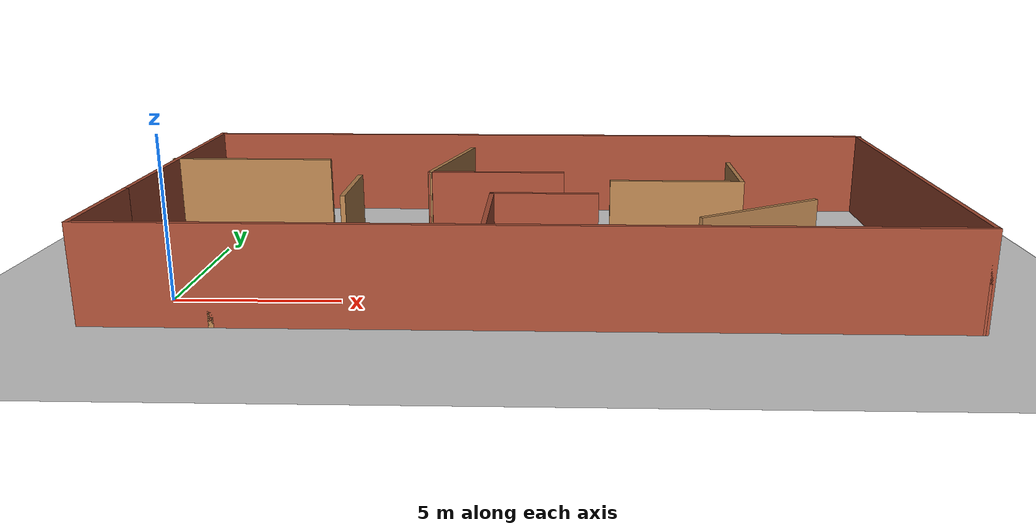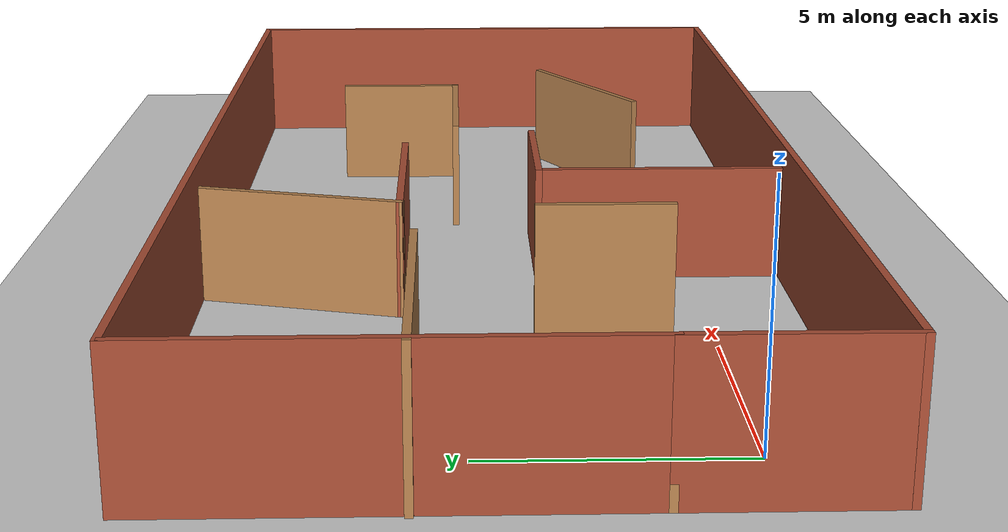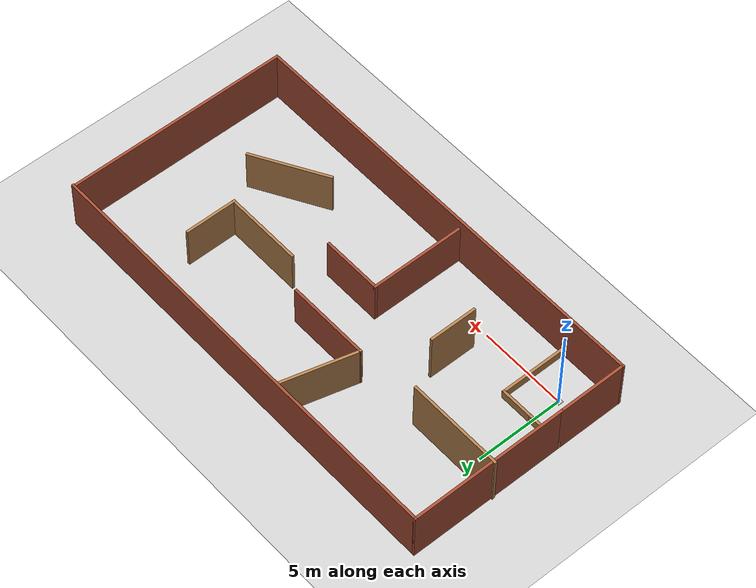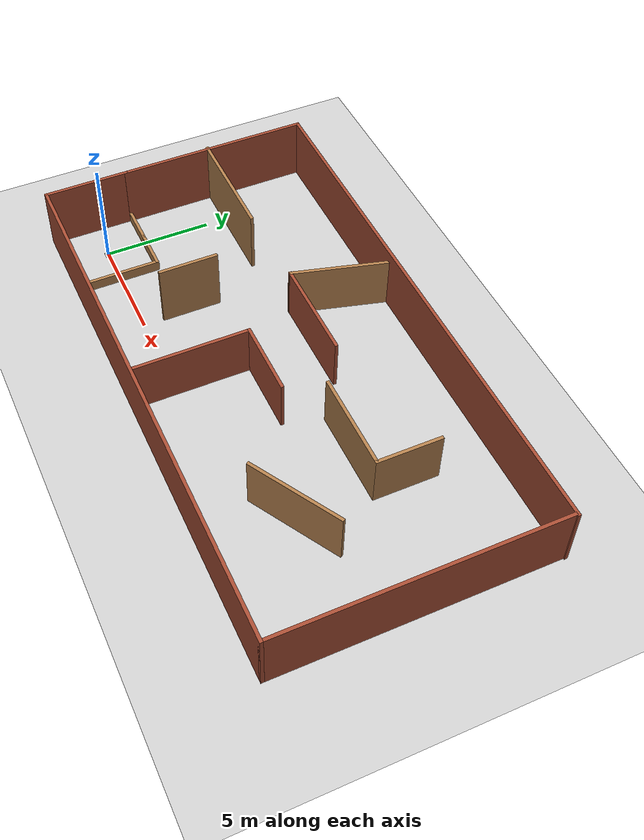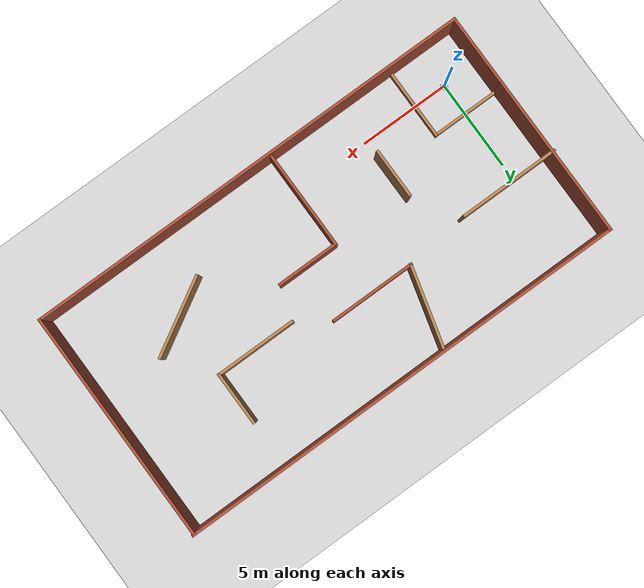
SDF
<sdf version="1.6">
 <world name="default">
  <light name="sun" type="directional">
   <pose>0 0 10 0 -0 0</pose>
   <diffuse>0.8 0.8 0.8 1</diffuse>
   <specular>0.2 0.2 0.2 1</specular>
   <attenuation>
    <range>1000</range>
    <constant>0.9</constant>
    <linear>0.01</linear>
    <quadratic>0.001</quadratic>
   </attenuation>
   <direction>-0.5 0.1 -0.9</direction>
  </light>
  <model name="ground_plane">
   <static>1</static>
   <link name="link">
    <collision name="collision">
     <geometry><plane><normal>0 0 1</normal><size>100 100</size></plane></geometry>
     <surface>
      <contact><collide_bitmask>65535</collide_bitmask></contact>
      <friction><ode><mu>100</mu><mu2>50</mu2></ode></friction>
     </surface>
    </collision>
    <visual name="visual">
     <cast_shadows>0</cast_shadows>
     <geometry><plane><normal>0 0 1</normal><size>100 100</size></plane></geometry>
     <material>
      <script><uri>file://media/materials/scripts/gazebo.material</uri><name>Gazebo/Grey</name></script>
     </material>
    </visual>
   </link>
  </model>
  <physics name="default_physics" default="0" type="ode">
   <ode>
    <solver>
     <type>quick</type>
     <iters>10</iters>
     <sor>1.3</sor>
     <use_dynamic_moi_rescaling>0</use_dynamic_moi_rescaling>
    </solver>
    <constraints>
     <cfm>0</cfm>
     <erp>0.2</erp>
     <contact_max_correcting_vel>100</contact_max_correcting_vel>
     <contact_surface_layer>0.001</contact_surface_layer>
    </constraints>
   </ode>
   <max_step_size>0.004</max_step_size>
   <real_time_factor>1</real_time_factor>
   <real_time_update_rate>250</real_time_update_rate>
  </physics>
  <gravity>0 0 -9.8066</gravity>
  <magnetic_field>6e-06 2.3e-05 -4.2e-05</magnetic_field>
  <atmosphere type="adiabatic"/>
  <scene><ambient>0.4 0.4 0.4 1</ambient><background>0.7 0.7 0.7 1</background><shadows>1</shadows></scene>
  <spherical_coordinates>
   <surface_model>EARTH_WGS84</surface_model>
   <latitude_deg>0</latitude_deg>
   <longitude_deg>0</longitude_deg>
   <elevation>0</elevation>
   <heading_deg>0</heading_deg>
  </spherical_coordinates>
  <model name="landing_pad">
   <link name="link">
    <inertial>
     <mass>1</mass>
     <inertia><ixx>1</ixx><ixy>0</ixy><ixz>0</ixz><iyy>1</iyy><iyz>0</iyz><izz>1</izz></inertia>
    </inertial>
    <visual name="visual">
     <cast_shadows>0</cast_shadows>
     <geometry><box><size>0.3 0.3 0.12</size></box></geometry>
     <material>
      <script>
       <uri>model://landing_pad/materials/scripts</uri>
       <uri>model://landing_pad/materials/textures</uri>
       <name>vrc/landing_pad</name>
      </script>
      <shader type="pixel"><normal_map>__default__</normal_map></shader>
     </material>
    </visual>
   </link>
   <static>1</static>
   <pose>0 0 -0.055 0 -0 0</pose>
  </model>
  <model name="explore_2">
   <pose>10.5435 4.296 0 0 -0 0</pose>
   <link name="Wall_64">
    <collision name="Wall_64_Collision">
     <geometry><box><size>2 0.15 0.5</size></box></geometry>
     <pose>0 0 0.25 0 -0 0</pose>
    </collision>
    <visual name="Wall_64_Visual">
     <pose>0 0 0.25 0 -0 0</pose>
     <geometry><box><size>2 0.15 0.5</size></box></geometry>
     <material>
      <script><uri>file://media/materials/scripts/gazebo.material</uri><name>Gazebo/Wood</name></script>
      <ambient>1 1 1 1</ambient>
     </material>
     <meta><layer>0</layer></meta>
    </visual>
    <pose>-9.6105 -2.5 0 0 -0 0</pose>
   </link>
   <link name="Wall_65">
    <collision name="Wall_65_Collision">
     <geometry><box><size>4 0.15 0.5</size></box></geometry>
     <pose>0 0 0.25 0 -0 0</pose>
    </collision>
    <visual name="Wall_65_Visual">
     <pose>0 0 0.25 0 -0 0</pose>
     <geometry><box><size>4 0.15 0.5</size></box></geometry>
     <material>
      <script><uri>file://media/materials/scripts/gazebo.material</uri><name>Gazebo/Wood</name></script>
      <ambient>1 1 1 1</ambient>
     </material>
     <meta><layer>0</layer></meta>
    </visual>
    <pose>-8.6855 -4.425 0 0 -0 -1.5708</pose>
   </link>
   <link name="Wall_67">
    <collision name="Wall_67_Collision">
     <geometry><box><size>2 0.15 0.5</size></box></geometry>
     <pose>0 0 0.25 0 -0 0</pose>
    </collision>
    <visual name="Wall_67_Visual">
     <pose>0 0 0.25 0 -0 0</pose>
     <geometry><box><size>2 0.15 0.5</size></box></geometry>
     <material>
      <script><uri>file://media/materials/scripts/gazebo.material</uri><name>Gazebo/Wood</name></script>
      <ambient>1 1 1 1</ambient>
     </material>
     <meta><layer>0</layer></meta>
    </visual>
    <pose>-11.4605 -2.5 0 0 -0 3.14159</pose>
   </link>
   <link name="Wall_69">
    <collision name="Wall_69_Collision">
     <geometry><box><size>4 0.15 3</size></box></geometry>
     <pose>0 0 1.5 0 -0 0</pose>
    </collision>
    <visual name="Wall_69_Visual">
     <pose>0 0 1.5 0 -0 0</pose>
     <geometry><box><size>4 0.15 3</size></box></geometry>
     <material>
      <script><uri>file://media/materials/scripts/gazebo.material</uri><name>Gazebo/Bricks</name></script>
      <ambient>1 1 1 1</ambient>
     </material>
     <meta><layer>0</layer></meta>
    </visual>
    <pose>-12.3855 -4.425 0 0 -0 -1.5708</pose>
   </link>
   <link name="Wall_70">
    <collision name="Wall_70_Collision">
     <geometry><box><size>24.9475 0.15 3</size></box></geometry>
     <pose>0 0 1.5 0 -0 0</pose>
    </collision>
    <visual name="Wall_70_Visual">
     <pose>0 0 1.5 0 -0 0</pose>
     <geometry><box><size>24.9475 0.15 3</size></box></geometry>
     <material>
      <script><uri>file://media/materials/scripts/gazebo.material</uri><name>Gazebo/Bricks</name></script>
      <ambient>1 1 1 1</ambient>
     </material>
     <meta><layer>0</layer></meta>
    </visual>
    <pose>0.013 -6.35 0 0 -0 0</pose>
   </link>
   <link name="Wall_71">
    <collision name="Wall_71_Collision">
     <geometry><box><size>12.75 0.15 3</size></box></geometry>
     <pose>0 0 1.5 0 -0 0</pose>
    </collision>
    <visual name="Wall_71_Visual">
     <pose>0 0 1.5 0 -0 0</pose>
     <geometry><box><size>12.75 0.15 3</size></box></geometry>
     <material>
      <script><uri>file://media/materials/scripts/gazebo.material</uri><name>Gazebo/Bricks</name></script>
      <ambient>1 1 1 1</ambient>
     </material>
     <meta><layer>0</layer></meta>
    </visual>
    <pose>12.4115 -0.05 0 0 -0 1.5708</pose>
   </link>
   <link name="Wall_73">
    <collision name="Wall_73_Collision">
     <geometry><box><size>9 0.15 3</size></box></geometry>
     <pose>0 0 1.5 0 -0 0</pose>
    </collision>
    <visual name="Wall_73_Visual">
     <pose>0 0 1.5 0 -0 0</pose>
     <geometry><box><size>9 0.15 3</size></box></geometry>
     <material>
      <script><uri>file://media/materials/scripts/gazebo.material</uri><name>Gazebo/Bricks</name></script>
      <ambient>1 1 1 1</ambient>
     </material>
     <meta><layer>0</layer></meta>
    </visual>
    <pose>-12.3855 1.925 0 0 -0 1.5708</pose>
   </link>
   <link name="Wall_74">
    <collision name="Wall_74_Collision">
     <geometry><box><size>25 0.15 3</size></box></geometry>
     <pose>0 0 1.5 0 -0 0</pose>
    </collision>
    <visual name="Wall_74_Visual">
     <pose>0 0 1.5 0 -0 0</pose>
     <geometry><box><size>25 0.15 3</size></box></geometry>
     <material>
      <script><uri>file://media/materials/scripts/gazebo.material</uri><name>Gazebo/Bricks</name></script>
      <ambient>1 1 1 1</ambient>
     </material>
     <meta><layer>0</layer></meta>
    </visual>
    <pose>0.0395 6.35 0 0 -0 0</pose>
   </link>
   <link name="Wall_76">
    <collision name="Wall_76_Collision">
     <geometry><box><size>5.5 0.15 3</size></box></geometry>
     <pose>0 0 1.5 0 -0 0</pose>
    </collision>
    <visual name="Wall_76_Visual">
     <pose>0 0 1.5 0 -0 0</pose>
     <geometry><box><size>5.5 0.15 3</size></box></geometry>
     <material>
      <script><uri>file://media/materials/scripts/gazebo.material</uri><name>Gazebo/Wood</name></script>
      <ambient>1 1 1 1</ambient>
     </material>
     <meta><layer>0</layer></meta>
    </visual>
    <pose>-9.7895 1.659 0 0 -0 0</pose>
   </link>
   <link name="Wall_79">
    <collision name="Wall_79_Collision">
     <geometry><box><size>2.75 0.15 3</size></box></geometry>
     <pose>0 0 1.5 0 -0 0</pose>
    </collision>
    <visual name="Wall_79_Visual">
     <pose>0 0 1.5 0 -0 0</pose>
     <geometry><box><size>2.75 0.15 3</size></box></geometry>
     <material>
      <script><uri>file://media/materials/scripts/gazebo.material</uri><name>Gazebo/Wood</name></script>
      <ambient>1 1 1 1</ambient>
     </material>
     <meta><layer>0</layer></meta>
    </visual>
    <pose>-5.5525 -2.015 0 0 -0 -1.5708</pose>
   </link>
   <link name="Wall_82">
    <collision name="Wall_82_Collision">
     <geometry><box><size>4.5 0.15 2.5</size></box></geometry>
     <pose>0 0 1.25 0 -0 0</pose>
    </collision>
    <visual name="Wall_82_Visual">
     <pose>0 0 1.25 0 -0 0</pose>
     <geometry><box><size>4.5 0.15 2.5</size></box></geometry>
     <material>
      <script><uri>file://media/materials/scripts/gazebo.material</uri><name>Gazebo/Wood</name></script>
      <ambient>1 1 1 1</ambient>
     </material>
     <meta><layer>0</layer></meta>
    </visual>
    <pose>-3.07964 4.12539 0 0 -0 1.309</pose>
   </link>
   <link name="Wall_84">
    <collision name="Wall_84_Collision">
     <geometry><box><size>4.75 0.15 2.5</size></box></geometry>
     <pose>0 0 1.25 0 -0 0</pose>
    </collision>
    <visual name="Wall_84_Visual">
     <pose>0 0 1.25 0 -0 0</pose>
     <geometry><box><size>4.75 0.15 2.5</size></box></geometry>
     <material>
      <script><uri>file://media/materials/scripts/gazebo.material</uri><name>Gazebo/Bricks</name></script>
      <ambient>1 1 1 1</ambient>
     </material>
     <meta><layer>0</layer></meta>
    </visual>
    <pose>-1.34257 2.0245 0 0 -0 0</pose>
   </link>
   <link name="Wall_86">
    <collision name="Wall_86_Collision">
     <geometry><box><size>5.5 0.15 2.5</size></box></geometry>
     <pose>0 0 1.25 0 -0 0</pose>
    </collision>
    <visual name="Wall_86_Visual">
     <pose>0 0 1.25 0 -0 0</pose>
     <geometry><box><size>5.5 0.15 2.5</size></box></geometry>
     <material>
      <script><uri>file://media/materials/scripts/gazebo.material</uri><name>Gazebo/Bricks</name></script>
      <ambient>1 1 1 1</ambient>
     </material>
     <meta><layer>0</layer></meta>
    </visual>
    <pose>-1.28632 -3.61448 0 0 -0 -1.5708</pose>
   </link>
   <link name="Wall_88">
    <collision name="Wall_88_Collision">
     <geometry><box><size>3.5 0.15 2.5</size></box></geometry>
     <pose>0 0 1.25 0 -0 0</pose>
    </collision>
    <visual name="Wall_88_Visual">
     <pose>0 0 1.25 0 -0 0</pose>
     <geometry><box><size>3.5 0.15 2.5</size></box></geometry>
     <material>
      <script><uri>file://media/materials/scripts/gazebo.material</uri><name>Gazebo/Bricks</name></script>
      <ambient>1 1 1 1</ambient>
     </material>
     <meta><layer>0</layer></meta>
    </visual>
    <pose>0.388681 -0.939476 0 0 -0 0</pose>
   </link>
   <link name="Wall_90">
    <collision name="Wall_90_Collision">
     <geometry><box><size>4.5 0.15 2.5</size></box></geometry>
     <pose>0 0 1.25 0 -0 0</pose>
    </collision>
    <visual name="Wall_90_Visual">
     <pose>0 0 1.25 0 -0 0</pose>
     <geometry><box><size>4.5 0.15 2.5</size></box></geometry>
     <material>
      <script><uri>file://media/materials/scripts/gazebo.material</uri><name>Gazebo/Wood</name></script>
      <ambient>1 1 1 1</ambient>
     </material>
     <meta><layer>0</layer></meta>
    </visual>
    <pose>4.83881 0.856038 0 0 -0 0</pose>
   </link>
   <link name="Wall_91">
    <collision name="Wall_91_Collision">
     <geometry><box><size>3 0.15 2.5</size></box></geometry>
     <pose>0 0 1.25 0 -0 0</pose>
    </collision>
    <visual name="Wall_91_Visual">
     <pose>0 0 1.25 0 -0 0</pose>
     <geometry><box><size>3 0.15 2.5</size></box></geometry>
     <material>
      <script><uri>file://media/materials/scripts/gazebo.material</uri><name>Gazebo/Wood</name></script>
      <ambient>1 1 1 1</ambient>
     </material>
     <meta><layer>0</layer></meta>
    </visual>
    <pose>7.01381 2.28104 0 0 -0 1.5708</pose>
   </link>
   <link name="Wall_93">
    <collision name="Wall_93_Collision">
     <geometry><box><size>4.5 0.15 2.5</size></box></geometry>
     <pose>0 0 1.25 0 -0 0</pose>
    </collision>
    <visual name="Wall_93_Visual">
     <pose>0 0 1.25 0 -0 0</pose>
     <geometry><box><size>4.5 0.15 2.5</size></box></geometry>
     <material>
      <script><uri>file://media/materials/scripts/gazebo.material</uri><name>Gazebo/Wood</name></script>
      <ambient>1 1 1 1</ambient>
     </material>
     <meta><layer>0</layer></meta>
    </visual>
    <pose>6.96475 -2.58558 0 0 -0 -2.61799</pose>
   </link>
   <static>1</static>
  </model>
 </world>
</sdf>
